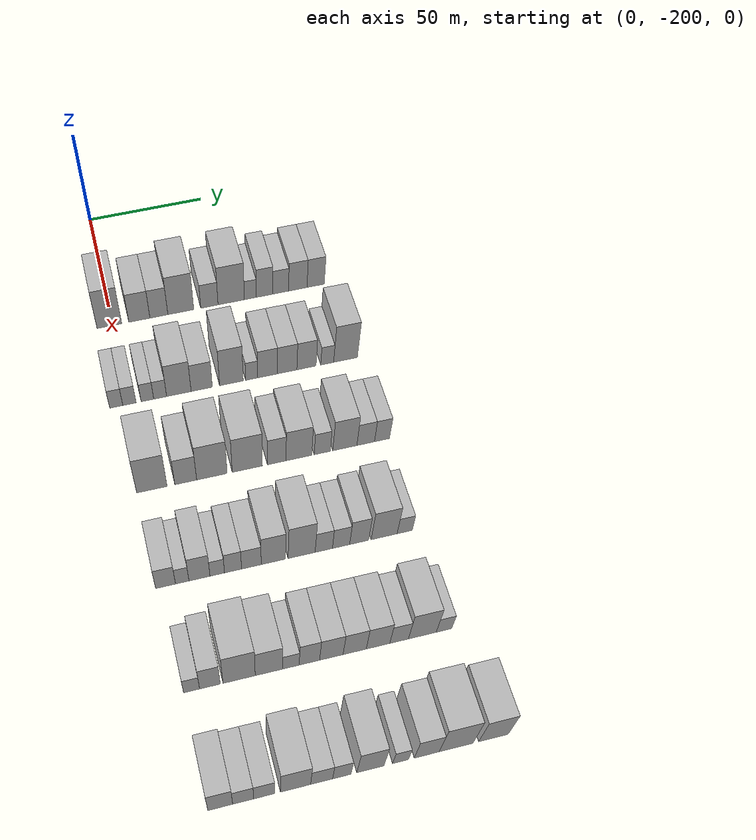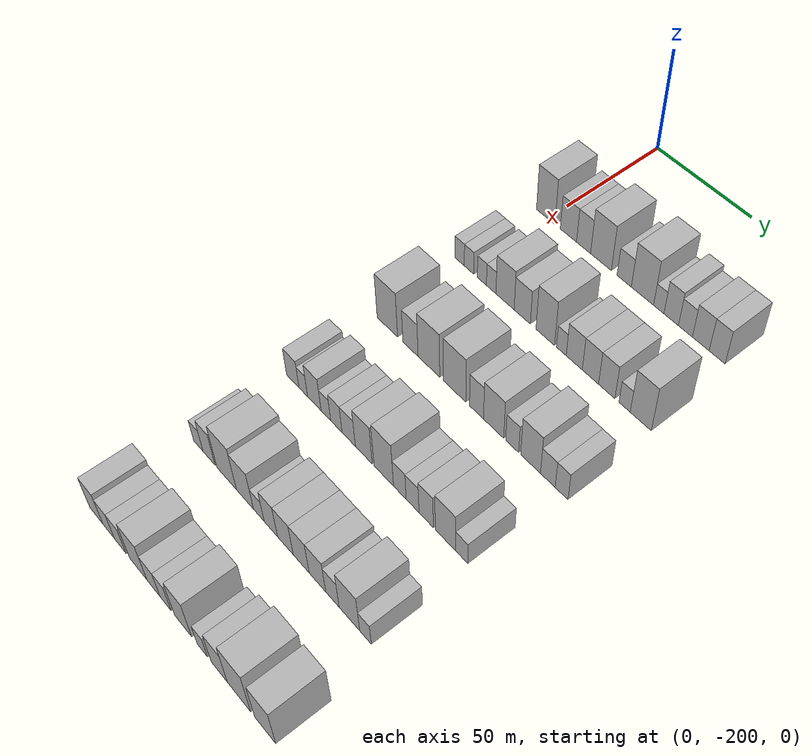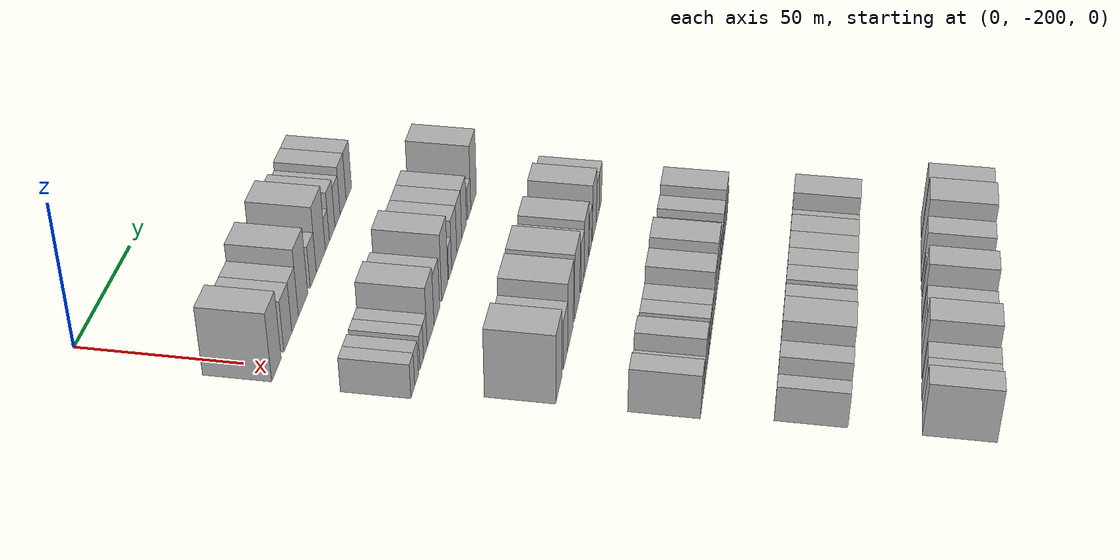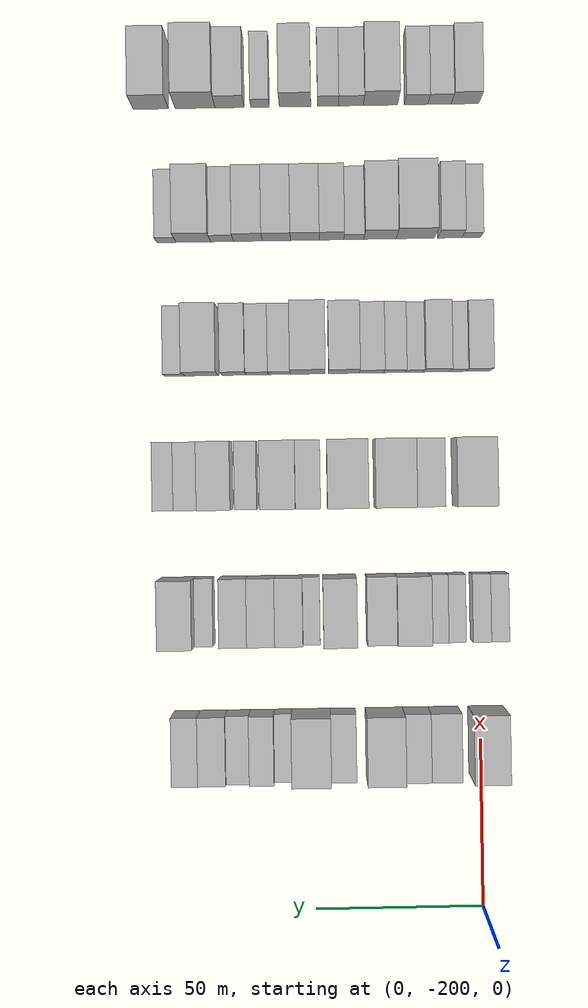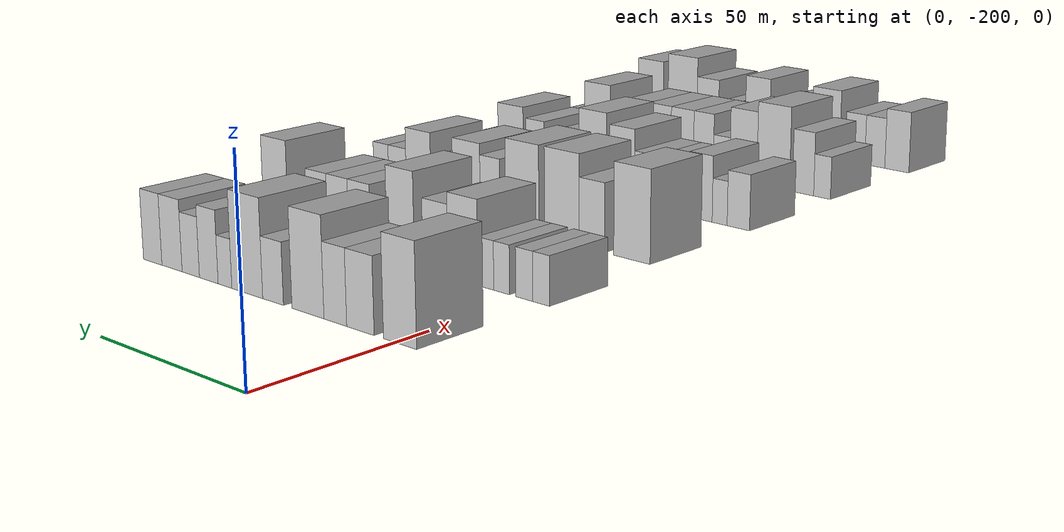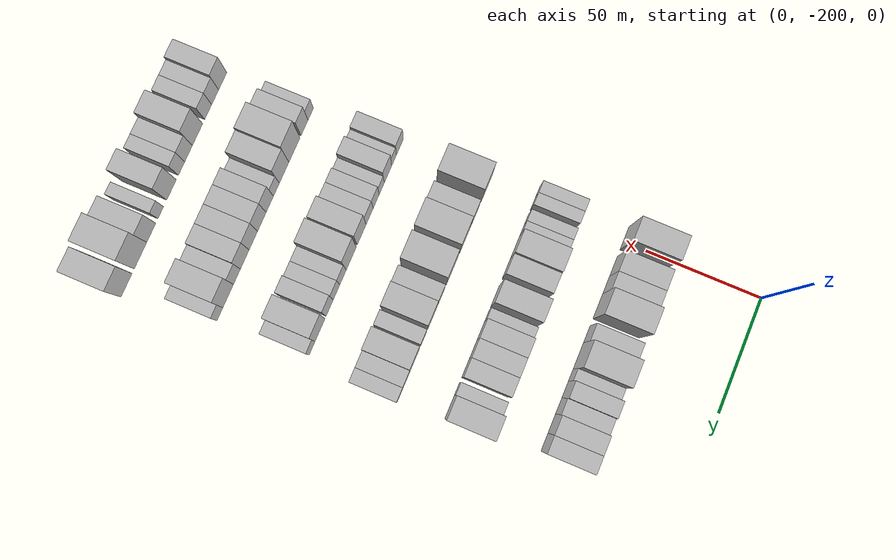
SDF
<sdf version="1.6">
 <world name="default">
  <model name="building_49">
   <static>1</static>
   <pose>50.0000 -201.4404 0 0.000000 0.000000 0.000000</pose>
   <link name="link">
    <pose>0 0 12.00 0 0 0</pose>
    <collision name="collision"><geometry><box><size>20.0000 10.3864 24.0000</size></box></geometry></collision>
    <visual name="visual">
     <cast_shadows>0</cast_shadows>
     <geometry><box><size>20.0000 10.3864 24.0000</size></box></geometry>
     <material>
      <script>
       <uri>model://HANNAS_wall/materials/scripts</uri>
       <uri>model://HANNAS_wall/materials/textures</uri>
       <name>vrc/HANNAS_wall</name>
      </script>
     </material>
    </visual>
   </link>
  </model>
  <model name="building_50">
   <static>1</static>
   <pose>50.0000 -188.7708 0 0.000000 0.000000 0.000000</pose>
   <link name="link">
    <pose>0 0 9.00 0 0 0</pose>
    <collision name="collision"><geometry><box><size>20.0000 8.9527 18.0000</size></box></geometry></collision>
    <visual name="visual">
     <cast_shadows>0</cast_shadows>
     <geometry><box><size>20.0000 8.9527 18.0000</size></box></geometry>
     <material>
      <script>
       <uri>model://HANNAS_wall/materials/scripts</uri>
       <uri>model://HANNAS_wall/materials/textures</uri>
       <name>vrc/HANNAS_wall</name>
      </script>
     </material>
    </visual>
   </link>
  </model>
  <model name="building_51">
   <static>1</static>
   <pose>50.0000 -180.4759 0 0.000000 0.000000 0.000000</pose>
   <link name="link">
    <pose>0 0 9.00 0 0 0</pose>
    <collision name="collision"><geometry><box><size>20.0000 7.6372 18.0000</size></box></geometry></collision>
    <visual name="visual">
     <cast_shadows>0</cast_shadows>
     <geometry><box><size>20.0000 7.6372 18.0000</size></box></geometry>
     <material>
      <script>
       <uri>model://HANNAS_wall/materials/scripts</uri>
       <uri>model://HANNAS_wall/materials/textures</uri>
       <name>vrc/HANNAS_wall</name>
      </script>
     </material>
    </visual>
   </link>
  </model>
  <model name="building_52">
   <static>1</static>
   <pose>50.0000 -171.1190 0 0.000000 0.000000 0.000000</pose>
   <link name="link">
    <pose>0 0 12.00 0 0 0</pose>
    <collision name="collision"><geometry><box><size>20.0000 11.0766 24.0000</size></box></geometry></collision>
    <visual name="visual">
     <cast_shadows>0</cast_shadows>
     <geometry><box><size>20.0000 11.0766 24.0000</size></box></geometry>
     <material>
      <script>
       <uri>model://HANNAS_wall/materials/scripts</uri>
       <uri>model://HANNAS_wall/materials/textures</uri>
       <name>vrc/HANNAS_wall</name>
      </script>
     </material>
    </visual>
   </link>
  </model>
  <model name="building_53">
   <static>1</static>
   <pose>50.0000 -158.8508 0 0.000000 0.000000 0.000000</pose>
   <link name="link">
    <pose>0 0 7.50 0 0 0</pose>
    <collision name="collision"><geometry><box><size>20.0000 7.4597 15.0000</size></box></geometry></collision>
    <visual name="visual">
     <cast_shadows>0</cast_shadows>
     <geometry><box><size>20.0000 7.4597 15.0000</size></box></geometry>
     <material>
      <script>
       <uri>model://HANNAS_wall/materials/scripts</uri>
       <uri>model://HANNAS_wall/materials/textures</uri>
       <name>vrc/HANNAS_wall</name>
      </script>
     </material>
    </visual>
   </link>
  </model>
  <model name="building_54">
   <static>1</static>
   <pose>50.0000 -149.4165 0 0.000000 0.000000 0.000000</pose>
   <link name="link">
    <pose>0 0 12.00 0 0 0</pose>
    <collision name="collision"><geometry><box><size>20.0000 11.4088 24.0000</size></box></geometry></collision>
    <visual name="visual">
     <cast_shadows>0</cast_shadows>
     <geometry><box><size>20.0000 11.4088 24.0000</size></box></geometry>
     <material>
      <script>
       <uri>model://HANNAS_wall/materials/scripts</uri>
       <uri>model://HANNAS_wall/materials/textures</uri>
       <name>vrc/HANNAS_wall</name>
      </script>
     </material>
    </visual>
   </link>
  </model>
  <model name="building_55">
   <static>1</static>
   <pose>50.0000 -141.1042 0 0.000000 0.000000 0.000000</pose>
   <link name="link">
    <pose>0 0 6.00 0 0 0</pose>
    <collision name="collision"><geometry><box><size>20.0000 5.2157 12.0000</size></box></geometry></collision>
    <visual name="visual">
     <cast_shadows>0</cast_shadows>
     <geometry><box><size>20.0000 5.2157 12.0000</size></box></geometry>
     <material>
      <script>
       <uri>model://HANNAS_wall/materials/scripts</uri>
       <uri>model://HANNAS_wall/materials/textures</uri>
       <name>vrc/HANNAS_wall</name>
      </script>
     </material>
    </visual>
   </link>
  </model>
  <model name="building_56">
   <static>1</static>
   <pose>50.0000 -134.8899 0 0.000000 0.000000 0.000000</pose>
   <link name="link">
    <pose>0 0 9.00 0 0 0</pose>
    <collision name="collision"><geometry><box><size>20.0000 7.2129 18.0000</size></box></geometry></collision>
    <visual name="visual">
     <cast_shadows>0</cast_shadows>
     <geometry><box><size>20.0000 7.2129 18.0000</size></box></geometry>
     <material>
      <script>
       <uri>model://HANNAS_wall/materials/scripts</uri>
       <uri>model://HANNAS_wall/materials/textures</uri>
       <name>vrc/HANNAS_wall</name>
      </script>
     </material>
    </visual>
   </link>
  </model>
  <model name="building_57">
   <static>1</static>
   <pose>50.0000 -127.8610 0 0.000000 0.000000 0.000000</pose>
   <link name="link">
    <pose>0 0 7.50 0 0 0</pose>
    <collision name="collision"><geometry><box><size>20.0000 6.8449 15.0000</size></box></geometry></collision>
    <visual name="visual">
     <cast_shadows>0</cast_shadows>
     <geometry><box><size>20.0000 6.8449 15.0000</size></box></geometry>
     <material>
      <script>
       <uri>model://HANNAS_wall/materials/scripts</uri>
       <uri>model://HANNAS_wall/materials/textures</uri>
       <name>vrc/HANNAS_wall</name>
      </script>
     </material>
    </visual>
   </link>
  </model>
  <model name="building_58">
   <static>1</static>
   <pose>50.0000 -120.3726 0 0.000000 0.000000 0.000000</pose>
   <link name="link">
    <pose>0 0 9.00 0 0 0</pose>
    <collision name="collision"><geometry><box><size>20.0000 8.1318 18.0000</size></box></geometry></collision>
    <visual name="visual">
     <cast_shadows>0</cast_shadows>
     <geometry><box><size>20.0000 8.1318 18.0000</size></box></geometry>
     <material>
      <script>
       <uri>model://HANNAS_wall/materials/scripts</uri>
       <uri>model://HANNAS_wall/materials/textures</uri>
       <name>vrc/HANNAS_wall</name>
      </script>
     </material>
    </visual>
   </link>
  </model>
  <model name="building_59">
   <static>1</static>
   <pose>50.0000 -112.5076 0 0.000000 0.000000 0.000000</pose>
   <link name="link">
    <pose>0 0 9.00 0 0 0</pose>
    <collision name="collision"><geometry><box><size>20.0000 7.5983 18.0000</size></box></geometry></collision>
    <visual name="visual">
     <cast_shadows>0</cast_shadows>
     <geometry><box><size>20.0000 7.5983 18.0000</size></box></geometry>
     <material>
      <script>
       <uri>model://HANNAS_wall/materials/scripts</uri>
       <uri>model://HANNAS_wall/materials/textures</uri>
       <name>vrc/HANNAS_wall</name>
      </script>
     </material>
    </visual>
   </link>
  </model>
  <model name="building_187">
   <static>1</static>
   <pose>90.0000 -205.3561 0 0.000000 0.000000 0.000000</pose>
   <link name="link">
    <pose>0 0 6.00 0 0 0</pose>
    <collision name="collision"><geometry><box><size>20.0000 5.2814 12.0000</size></box></geometry></collision>
    <visual name="visual">
     <cast_shadows>0</cast_shadows>
     <geometry><box><size>20.0000 5.2814 12.0000</size></box></geometry>
     <material>
      <script>
       <uri>model://HANNAS_wall/materials/scripts</uri>
       <uri>model://HANNAS_wall/materials/textures</uri>
       <name>vrc/HANNAS_wall</name>
      </script>
     </material>
    </visual>
   </link>
  </model>
  <model name="building_188">
   <static>1</static>
   <pose>90.0000 -200.0244 0 0.000000 0.000000 0.000000</pose>
   <link name="link">
    <pose>0 0 6.00 0 0 0</pose>
    <collision name="collision"><geometry><box><size>20.0000 5.3820 12.0000</size></box></geometry></collision>
    <visual name="visual">
     <cast_shadows>0</cast_shadows>
     <geometry><box><size>20.0000 5.3820 12.0000</size></box></geometry>
     <material>
      <script>
       <uri>model://HANNAS_wall/materials/scripts</uri>
       <uri>model://HANNAS_wall/materials/textures</uri>
       <name>vrc/HANNAS_wall</name>
      </script>
     </material>
    </visual>
   </link>
  </model>
  <model name="building_189">
   <static>1</static>
   <pose>90.0000 -192.7798 0 0.000000 0.000000 0.000000</pose>
   <link name="link">
    <pose>0 0 6.00 0 0 0</pose>
    <collision name="collision"><geometry><box><size>20.0000 5.1073 12.0000</size></box></geometry></collision>
    <visual name="visual">
     <cast_shadows>0</cast_shadows>
     <geometry><box><size>20.0000 5.1073 12.0000</size></box></geometry>
     <material>
      <script>
       <uri>model://HANNAS_wall/materials/scripts</uri>
       <uri>model://HANNAS_wall/materials/textures</uri>
       <name>vrc/HANNAS_wall</name>
      </script>
     </material>
    </visual>
   </link>
  </model>
  <model name="building_190">
   <static>1</static>
   <pose>90.0000 -187.6021 0 0.000000 0.000000 0.000000</pose>
   <link name="link">
    <pose>0 0 6.00 0 0 0</pose>
    <collision name="collision"><geometry><box><size>20.0000 5.2482 12.0000</size></box></geometry></collision>
    <visual name="visual">
     <cast_shadows>0</cast_shadows>
     <geometry><box><size>20.0000 5.2482 12.0000</size></box></geometry>
     <material>
      <script>
       <uri>model://HANNAS_wall/materials/scripts</uri>
       <uri>model://HANNAS_wall/materials/textures</uri>
       <name>vrc/HANNAS_wall</name>
      </script>
     </material>
    </visual>
   </link>
  </model>
  <model name="building_191">
   <static>1</static>
   <pose>90.0000 -179.9806 0 0.000000 0.000000 0.000000</pose>
   <link name="link">
    <pose>0 0 10.50 0 0 0</pose>
    <collision name="collision"><geometry><box><size>20.0000 9.9947 21.0000</size></box></geometry></collision>
    <visual name="visual">
     <cast_shadows>0</cast_shadows>
     <geometry><box><size>20.0000 9.9947 21.0000</size></box></geometry>
     <material>
      <script>
       <uri>model://HANNAS_wall/materials/scripts</uri>
       <uri>model://HANNAS_wall/materials/textures</uri>
       <name>vrc/HANNAS_wall</name>
      </script>
     </material>
    </visual>
   </link>
  </model>
  <model name="building_192">
   <static>1</static>
   <pose>90.0000 -170.6391 0 0.000000 0.000000 0.000000</pose>
   <link name="link">
    <pose>0 0 9.00 0 0 0</pose>
    <collision name="collision"><geometry><box><size>20.0000 8.6883 18.0000</size></box></geometry></collision>
    <visual name="visual">
     <cast_shadows>0</cast_shadows>
     <geometry><box><size>20.0000 8.6883 18.0000</size></box></geometry>
     <material>
      <script>
       <uri>model://HANNAS_wall/materials/scripts</uri>
       <uri>model://HANNAS_wall/materials/textures</uri>
       <name>vrc/HANNAS_wall</name>
      </script>
     </material>
    </visual>
   </link>
  </model>
  <model name="building_193">
   <static>1</static>
   <pose>90.0000 -158.4213 0 0.000000 0.000000 0.000000</pose>
   <link name="link">
    <pose>0 0 12.00 0 0 0</pose>
    <collision name="collision"><geometry><box><size>20.0000 9.7473 24.0000</size></box></geometry></collision>
    <visual name="visual">
     <cast_shadows>0</cast_shadows>
     <geometry><box><size>20.0000 9.7473 24.0000</size></box></geometry>
     <material>
      <script>
       <uri>model://HANNAS_wall/materials/scripts</uri>
       <uri>model://HANNAS_wall/materials/textures</uri>
       <name>vrc/HANNAS_wall</name>
      </script>
     </material>
    </visual>
   </link>
  </model>
  <model name="building_194">
   <static>1</static>
   <pose>90.0000 -150.0361 0 0.000000 0.000000 0.000000</pose>
   <link name="link">
    <pose>0 0 6.00 0 0 0</pose>
    <collision name="collision"><geometry><box><size>20.0000 5.0231 12.0000</size></box></geometry></collision>
    <visual name="visual">
     <cast_shadows>0</cast_shadows>
     <geometry><box><size>20.0000 5.0231 12.0000</size></box></geometry>
     <material>
      <script>
       <uri>model://HANNAS_wall/materials/scripts</uri>
       <uri>model://HANNAS_wall/materials/textures</uri>
       <name>vrc/HANNAS_wall</name>
      </script>
     </material>
    </visual>
   </link>
  </model>
  <model name="building_195">
   <static>1</static>
   <pose>90.0000 -143.4325 0 0.000000 0.000000 0.000000</pose>
   <link name="link">
    <pose>0 0 9.00 0 0 0</pose>
    <collision name="collision"><geometry><box><size>20.0000 8.1840 18.0000</size></box></geometry></collision>
    <visual name="visual">
     <cast_shadows>0</cast_shadows>
     <geometry><box><size>20.0000 8.1840 18.0000</size></box></geometry>
     <material>
      <script>
       <uri>model://HANNAS_wall/materials/scripts</uri>
       <uri>model://HANNAS_wall/materials/textures</uri>
       <name>vrc/HANNAS_wall</name>
      </script>
     </material>
    </visual>
   </link>
  </model>
  <model name="building_196">
   <static>1</static>
   <pose>90.0000 -135.2603 0 0.000000 0.000000 0.000000</pose>
   <link name="link">
    <pose>0 0 9.00 0 0 0</pose>
    <collision name="collision"><geometry><box><size>20.0000 8.1604 18.0000</size></box></geometry></collision>
    <visual name="visual">
     <cast_shadows>0</cast_shadows>
     <geometry><box><size>20.0000 8.1604 18.0000</size></box></geometry>
     <material>
      <script>
       <uri>model://HANNAS_wall/materials/scripts</uri>
       <uri>model://HANNAS_wall/materials/textures</uri>
       <name>vrc/HANNAS_wall</name>
      </script>
     </material>
    </visual>
   </link>
  </model>
  <model name="building_197">
   <static>1</static>
   <pose>90.0000 -127.1543 0 0.000000 0.000000 0.000000</pose>
   <link name="link">
    <pose>0 0 9.00 0 0 0</pose>
    <collision name="collision"><geometry><box><size>20.0000 8.0516 18.0000</size></box></geometry></collision>
    <visual name="visual">
     <cast_shadows>0</cast_shadows>
     <geometry><box><size>20.0000 8.0516 18.0000</size></box></geometry>
     <material>
      <script>
       <uri>model://HANNAS_wall/materials/scripts</uri>
       <uri>model://HANNAS_wall/materials/textures</uri>
       <name>vrc/HANNAS_wall</name>
      </script>
     </material>
    </visual>
   </link>
  </model>
  <model name="building_198">
   <static>1</static>
   <pose>90.0000 -118.4009 0 0.000000 0.000000 0.000000</pose>
   <link name="link">
    <pose>0 0 6.00 0 0 0</pose>
    <collision name="collision"><geometry><box><size>20.0000 5.4553 12.0000</size></box></geometry></collision>
    <visual name="visual">
     <cast_shadows>0</cast_shadows>
     <geometry><box><size>20.0000 5.4553 12.0000</size></box></geometry>
     <material>
      <script>
       <uri>model://HANNAS_wall/materials/scripts</uri>
       <uri>model://HANNAS_wall/materials/textures</uri>
       <name>vrc/HANNAS_wall</name>
      </script>
     </material>
    </visual>
   </link>
  </model>
  <model name="building_199">
   <static>1</static>
   <pose>90.0000 -110.6467 0 0.000000 0.000000 0.000000</pose>
   <link name="link">
    <pose>0 0 12.00 0 0 0</pose>
    <collision name="collision"><geometry><box><size>20.0000 10.0531 24.0000</size></box></geometry></collision>
    <visual name="visual">
     <cast_shadows>0</cast_shadows>
     <geometry><box><size>20.0000 10.0531 24.0000</size></box></geometry>
     <material>
      <script>
       <uri>model://HANNAS_wall/materials/scripts</uri>
       <uri>model://HANNAS_wall/materials/textures</uri>
       <name>vrc/HANNAS_wall</name>
      </script>
     </material>
    </visual>
   </link>
  </model>
  <model name="building_328">
   <static>1</static>
   <pose>130.0000 -198.4679 0 0.000000 0.000000 0.000000</pose>
   <link name="link">
    <pose>0 0 12.00 0 0 0</pose>
    <collision name="collision"><geometry><box><size>20.0000 11.7392 24.0000</size></box></geometry></collision>
    <visual name="visual">
     <cast_shadows>0</cast_shadows>
     <geometry><box><size>20.0000 11.7392 24.0000</size></box></geometry>
     <material>
      <script>
       <uri>model://HANNAS_wall/materials/scripts</uri>
       <uri>model://HANNAS_wall/materials/textures</uri>
       <name>vrc/HANNAS_wall</name>
      </script>
     </material>
    </visual>
   </link>
  </model>
  <model name="building_329">
   <static>1</static>
   <pose>130.0000 -185.3499 0 0.000000 0.000000 0.000000</pose>
   <link name="link">
    <pose>0 0 9.00 0 0 0</pose>
    <collision name="collision"><geometry><box><size>20.0000 8.4970 18.0000</size></box></geometry></collision>
    <visual name="visual">
     <cast_shadows>0</cast_shadows>
     <geometry><box><size>20.0000 8.4970 18.0000</size></box></geometry>
     <material>
      <script>
       <uri>model://HANNAS_wall/materials/scripts</uri>
       <uri>model://HANNAS_wall/materials/textures</uri>
       <name>vrc/HANNAS_wall</name>
      </script>
     </material>
    </visual>
   </link>
  </model>
  <model name="building_330">
   <static>1</static>
   <pose>130.0000 -175.1386 0 0.000000 0.000000 0.000000</pose>
   <link name="link">
    <pose>0 0 12.00 0 0 0</pose>
    <collision name="collision"><geometry><box><size>20.0000 11.9255 24.0000</size></box></geometry></collision>
    <visual name="visual">
     <cast_shadows>0</cast_shadows>
     <geometry><box><size>20.0000 11.9255 24.0000</size></box></geometry>
     <material>
      <script>
       <uri>model://HANNAS_wall/materials/scripts</uri>
       <uri>model://HANNAS_wall/materials/textures</uri>
       <name>vrc/HANNAS_wall</name>
      </script>
     </material>
    </visual>
   </link>
  </model>
  <model name="building_331">
   <static>1</static>
   <pose>130.0000 -161.2317 0 0.000000 0.000000 0.000000</pose>
   <link name="link">
    <pose>0 0 12.00 0 0 0</pose>
    <collision name="collision"><geometry><box><size>20.0000 11.8884 24.0000</size></box></geometry></collision>
    <visual name="visual">
     <cast_shadows>0</cast_shadows>
     <geometry><box><size>20.0000 11.8884 24.0000</size></box></geometry>
     <material>
      <script>
       <uri>model://HANNAS_wall/materials/scripts</uri>
       <uri>model://HANNAS_wall/materials/textures</uri>
       <name>vrc/HANNAS_wall</name>
      </script>
     </material>
    </visual>
   </link>
  </model>
  <model name="building_332">
   <static>1</static>
   <pose>130.0000 -149.6320 0 0.000000 0.000000 0.000000</pose>
   <link name="link">
    <pose>0 0 9.00 0 0 0</pose>
    <collision name="collision"><geometry><box><size>20.0000 7.3110 18.0000</size></box></geometry></collision>
    <visual name="visual">
     <cast_shadows>0</cast_shadows>
     <geometry><box><size>20.0000 7.3110 18.0000</size></box></geometry>
     <material>
      <script>
       <uri>model://HANNAS_wall/materials/scripts</uri>
       <uri>model://HANNAS_wall/materials/textures</uri>
       <name>vrc/HANNAS_wall</name>
      </script>
     </material>
    </visual>
   </link>
  </model>
  <model name="building_333">
   <static>1</static>
   <pose>130.0000 -140.8203 0 0.000000 0.000000 0.000000</pose>
   <link name="link">
    <pose>0 0 10.50 0 0 0</pose>
    <collision name="collision"><geometry><box><size>20.0000 10.3123 21.0000</size></box></geometry></collision>
    <visual name="visual">
     <cast_shadows>0</cast_shadows>
     <geometry><box><size>20.0000 10.3123 21.0000</size></box></geometry>
     <material>
      <script>
       <uri>model://HANNAS_wall/materials/scripts</uri>
       <uri>model://HANNAS_wall/materials/textures</uri>
       <name>vrc/HANNAS_wall</name>
      </script>
     </material>
    </visual>
   </link>
  </model>
  <model name="building_334">
   <static>1</static>
   <pose>130.0000 -131.4295 0 0.000000 0.000000 0.000000</pose>
   <link name="link">
    <pose>0 0 7.50 0 0 0</pose>
    <collision name="collision"><geometry><box><size>20.0000 6.4694 15.0000</size></box></geometry></collision>
    <visual name="visual">
     <cast_shadows>0</cast_shadows>
     <geometry><box><size>20.0000 6.4694 15.0000</size></box></geometry>
     <material>
      <script>
       <uri>model://HANNAS_wall/materials/scripts</uri>
       <uri>model://HANNAS_wall/materials/textures</uri>
       <name>vrc/HANNAS_wall</name>
      </script>
     </material>
    </visual>
   </link>
  </model>
  <model name="building_335">
   <static>1</static>
   <pose>130.0000 -122.3208 0 0.000000 0.000000 0.000000</pose>
   <link name="link">
    <pose>0 0 10.50 0 0 0</pose>
    <collision name="collision"><geometry><box><size>20.0000 9.7481 21.0000</size></box></geometry></collision>
    <visual name="visual">
     <cast_shadows>0</cast_shadows>
     <geometry><box><size>20.0000 9.7481 21.0000</size></box></geometry>
     <material>
      <script>
       <uri>model://HANNAS_wall/materials/scripts</uri>
       <uri>model://HANNAS_wall/materials/textures</uri>
       <name>vrc/HANNAS_wall</name>
      </script>
     </material>
    </visual>
   </link>
  </model>
  <model name="building_336">
   <static>1</static>
   <pose>130.0000 -113.8833 0 0.000000 0.000000 0.000000</pose>
   <link name="link">
    <pose>0 0 7.50 0 0 0</pose>
    <collision name="collision"><geometry><box><size>20.0000 7.1268 15.0000</size></box></geometry></collision>
    <visual name="visual">
     <cast_shadows>0</cast_shadows>
     <geometry><box><size>20.0000 7.1268 15.0000</size></box></geometry>
     <material>
      <script>
       <uri>model://HANNAS_wall/materials/scripts</uri>
       <uri>model://HANNAS_wall/materials/textures</uri>
       <name>vrc/HANNAS_wall</name>
      </script>
     </material>
    </visual>
   </link>
  </model>
  <model name="building_337">
   <static>1</static>
   <pose>130.0000 -107.2702 0 0.000000 0.000000 0.000000</pose>
   <link name="link">
    <pose>0 0 7.50 0 0 0</pose>
    <collision name="collision"><geometry><box><size>20.0000 6.0994 15.0000</size></box></geometry></collision>
    <visual name="visual">
     <cast_shadows>0</cast_shadows>
     <geometry><box><size>20.0000 6.0994 15.0000</size></box></geometry>
     <material>
      <script>
       <uri>model://HANNAS_wall/materials/scripts</uri>
       <uri>model://HANNAS_wall/materials/textures</uri>
       <name>vrc/HANNAS_wall</name>
      </script>
     </material>
    </visual>
   </link>
  </model>
  <model name="building_470">
   <static>1</static>
   <pose>170.0000 -200.9420 0 0.000000 0.000000 0.000000</pose>
   <link name="link">
    <pose>0 0 7.50 0 0 0</pose>
    <collision name="collision"><geometry><box><size>20.0000 7.3117 15.0000</size></box></geometry></collision>
    <visual name="visual">
     <cast_shadows>0</cast_shadows>
     <geometry><box><size>20.0000 7.3117 15.0000</size></box></geometry>
     <material>
      <script>
       <uri>model://HANNAS_wall/materials/scripts</uri>
       <uri>model://HANNAS_wall/materials/textures</uri>
       <name>vrc/HANNAS_wall</name>
      </script>
     </material>
    </visual>
   </link>
  </model>
  <model name="building_471">
   <static>1</static>
   <pose>170.0000 -194.8061 0 0.000000 0.000000 0.000000</pose>
   <link name="link">
    <pose>0 0 6.00 0 0 0</pose>
    <collision name="collision"><geometry><box><size>20.0000 4.9601 12.0000</size></box></geometry></collision>
    <visual name="visual">
     <cast_shadows>0</cast_shadows>
     <geometry><box><size>20.0000 4.9601 12.0000</size></box></geometry>
     <material>
      <script>
       <uri>model://HANNAS_wall/materials/scripts</uri>
       <uri>model://HANNAS_wall/materials/textures</uri>
       <name>vrc/HANNAS_wall</name>
      </script>
     </material>
    </visual>
   </link>
  </model>
  <model name="building_472">
   <static>1</static>
   <pose>170.0000 -188.4344 0 0.000000 0.000000 0.000000</pose>
   <link name="link">
    <pose>0 0 9.00 0 0 0</pose>
    <collision name="collision"><geometry><box><size>20.0000 7.7833 18.0000</size></box></geometry></collision>
    <visual name="visual">
     <cast_shadows>0</cast_shadows>
     <geometry><box><size>20.0000 7.7833 18.0000</size></box></geometry>
     <material>
      <script>
       <uri>model://HANNAS_wall/materials/scripts</uri>
       <uri>model://HANNAS_wall/materials/textures</uri>
       <name>vrc/HANNAS_wall</name>
      </script>
     </material>
    </visual>
   </link>
  </model>
  <model name="building_473">
   <static>1</static>
   <pose>170.0000 -181.8443 0 0.000000 0.000000 0.000000</pose>
   <link name="link">
    <pose>0 0 6.00 0 0 0</pose>
    <collision name="collision"><geometry><box><size>20.0000 5.3969 12.0000</size></box></geometry></collision>
    <visual name="visual">
     <cast_shadows>0</cast_shadows>
     <geometry><box><size>20.0000 5.3969 12.0000</size></box></geometry>
     <material>
      <script>
       <uri>model://HANNAS_wall/materials/scripts</uri>
       <uri>model://HANNAS_wall/materials/textures</uri>
       <name>vrc/HANNAS_wall</name>
      </script>
     </material>
    </visual>
   </link>
  </model>
  <model name="building_474">
   <static>1</static>
   <pose>170.0000 -175.9743 0 0.000000 0.000000 0.000000</pose>
   <link name="link">
    <pose>0 0 7.50 0 0 0</pose>
    <collision name="collision"><geometry><box><size>20.0000 6.3432 15.0000</size></box></geometry></collision>
    <visual name="visual">
     <cast_shadows>0</cast_shadows>
     <geometry><box><size>20.0000 6.3432 15.0000</size></box></geometry>
     <material>
      <script>
       <uri>model://HANNAS_wall/materials/scripts</uri>
       <uri>model://HANNAS_wall/materials/textures</uri>
       <name>vrc/HANNAS_wall</name>
      </script>
     </material>
    </visual>
   </link>
  </model>
  <model name="building_475">
   <static>1</static>
   <pose>170.0000 -169.1184 0 0.000000 0.000000 0.000000</pose>
   <link name="link">
    <pose>0 0 7.50 0 0 0</pose>
    <collision name="collision"><geometry><box><size>20.0000 7.3685 15.0000</size></box></geometry></collision>
    <visual name="visual">
     <cast_shadows>0</cast_shadows>
     <geometry><box><size>20.0000 7.3685 15.0000</size></box></geometry>
     <material>
      <script>
       <uri>model://HANNAS_wall/materials/scripts</uri>
       <uri>model://HANNAS_wall/materials/textures</uri>
       <name>vrc/HANNAS_wall</name>
      </script>
     </material>
    </visual>
   </link>
  </model>
  <model name="building_476">
   <static>1</static>
   <pose>170.0000 -160.8722 0 0.000000 0.000000 0.000000</pose>
   <link name="link">
    <pose>0 0 10.50 0 0 0</pose>
    <collision name="collision"><geometry><box><size>20.0000 9.1240 21.0000</size></box></geometry></collision>
    <visual name="visual">
     <cast_shadows>0</cast_shadows>
     <geometry><box><size>20.0000 9.1240 21.0000</size></box></geometry>
     <material>
      <script>
       <uri>model://HANNAS_wall/materials/scripts</uri>
       <uri>model://HANNAS_wall/materials/textures</uri>
       <name>vrc/HANNAS_wall</name>
      </script>
     </material>
    </visual>
   </link>
  </model>
  <model name="building_477">
   <static>1</static>
   <pose>170.0000 -150.1738 0 0.000000 0.000000 0.000000</pose>
   <link name="link">
    <pose>0 0 12.00 0 0 0</pose>
    <collision name="collision"><geometry><box><size>20.0000 10.2728 24.0000</size></box></geometry></collision>
    <visual name="visual">
     <cast_shadows>0</cast_shadows>
     <geometry><box><size>20.0000 10.2728 24.0000</size></box></geometry>
     <material>
      <script>
       <uri>model://HANNAS_wall/materials/scripts</uri>
       <uri>model://HANNAS_wall/materials/textures</uri>
       <name>vrc/HANNAS_wall</name>
      </script>
     </material>
    </visual>
   </link>
  </model>
  <model name="building_478">
   <static>1</static>
   <pose>170.0000 -141.7403 0 0.000000 0.000000 0.000000</pose>
   <link name="link">
    <pose>0 0 7.50 0 0 0</pose>
    <collision name="collision"><geometry><box><size>20.0000 6.5943 15.0000</size></box></geometry></collision>
    <visual name="visual">
     <cast_shadows>0</cast_shadows>
     <geometry><box><size>20.0000 6.5943 15.0000</size></box></geometry>
     <material>
      <script>
       <uri>model://HANNAS_wall/materials/scripts</uri>
       <uri>model://HANNAS_wall/materials/textures</uri>
       <name>vrc/HANNAS_wall</name>
      </script>
     </material>
    </visual>
   </link>
  </model>
  <model name="building_479">
   <static>1</static>
   <pose>170.0000 -135.1434 0 0.000000 0.000000 0.000000</pose>
   <link name="link">
    <pose>0 0 7.50 0 0 0</pose>
    <collision name="collision"><geometry><box><size>20.0000 6.5996 15.0000</size></box></geometry></collision>
    <visual name="visual">
     <cast_shadows>0</cast_shadows>
     <geometry><box><size>20.0000 6.5996 15.0000</size></box></geometry>
     <material>
      <script>
       <uri>model://HANNAS_wall/materials/scripts</uri>
       <uri>model://HANNAS_wall/materials/textures</uri>
       <name>vrc/HANNAS_wall</name>
      </script>
     </material>
    </visual>
   </link>
  </model>
  <model name="building_480">
   <static>1</static>
   <pose>170.0000 -128.2075 0 0.000000 0.000000 0.000000</pose>
   <link name="link">
    <pose>0 0 9.00 0 0 0</pose>
    <collision name="collision"><geometry><box><size>20.0000 7.2723 18.0000</size></box></geometry></collision>
    <visual name="visual">
     <cast_shadows>0</cast_shadows>
     <geometry><box><size>20.0000 7.2723 18.0000</size></box></geometry>
     <material>
      <script>
       <uri>model://HANNAS_wall/materials/scripts</uri>
       <uri>model://HANNAS_wall/materials/textures</uri>
       <name>vrc/HANNAS_wall</name>
      </script>
     </material>
    </visual>
   </link>
  </model>
  <model name="building_481">
   <static>1</static>
   <pose>170.0000 -118.5507 0 0.000000 0.000000 0.000000</pose>
   <link name="link">
    <pose>0 0 10.50 0 0 0</pose>
    <collision name="collision"><geometry><box><size>20.0000 10.0412 21.0000</size></box></geometry></collision>
    <visual name="visual">
     <cast_shadows>0</cast_shadows>
     <geometry><box><size>20.0000 10.0412 21.0000</size></box></geometry>
     <material>
      <script>
       <uri>model://HANNAS_wall/materials/scripts</uri>
       <uri>model://HANNAS_wall/materials/textures</uri>
       <name>vrc/HANNAS_wall</name>
      </script>
     </material>
    </visual>
   </link>
  </model>
  <model name="building_482">
   <static>1</static>
   <pose>170.0000 -110.5894 0 0.000000 0.000000 0.000000</pose>
   <link name="link">
    <pose>0 0 6.00 0 0 0</pose>
    <collision name="collision"><geometry><box><size>20.0000 5.8815 12.0000</size></box></geometry></collision>
    <visual name="visual">
     <cast_shadows>0</cast_shadows>
     <geometry><box><size>20.0000 5.8815 12.0000</size></box></geometry>
     <material>
      <script>
       <uri>model://HANNAS_wall/materials/scripts</uri>
       <uri>model://HANNAS_wall/materials/textures</uri>
       <name>vrc/HANNAS_wall</name>
      </script>
     </material>
    </visual>
   </link>
  </model>
  <model name="building_620">
   <static>1</static>
   <pose>210.0000 -199.6461 0 0.000000 0.000000 0.000000</pose>
   <link name="link">
    <pose>0 0 6.00 0 0 0</pose>
    <collision name="collision"><geometry><box><size>20.0000 5.5928 12.0000</size></box></geometry></collision>
    <visual name="visual">
     <cast_shadows>0</cast_shadows>
     <geometry><box><size>20.0000 5.5928 12.0000</size></box></geometry>
     <material>
      <script>
       <uri>model://HANNAS_wall/materials/scripts</uri>
       <uri>model://HANNAS_wall/materials/textures</uri>
       <name>vrc/HANNAS_wall</name>
      </script>
     </material>
    </visual>
   </link>
  </model>
  <model name="building_621">
   <static>1</static>
   <pose>210.0000 -193.2319 0 0.000000 0.000000 0.000000</pose>
   <link name="link">
    <pose>0 0 9.00 0 0 0</pose>
    <collision name="collision"><geometry><box><size>20.0000 7.2357 18.0000</size></box></geometry></collision>
    <visual name="visual">
     <cast_shadows>0</cast_shadows>
     <geometry><box><size>20.0000 7.2357 18.0000</size></box></geometry>
     <material>
      <script>
       <uri>model://HANNAS_wall/materials/scripts</uri>
       <uri>model://HANNAS_wall/materials/textures</uri>
       <name>vrc/HANNAS_wall</name>
      </script>
     </material>
    </visual>
   </link>
  </model>
  <model name="building_622">
   <static>1</static>
   <pose>210.0000 -182.9222 0 0.000000 0.000000 0.000000</pose>
   <link name="link">
    <pose>0 0 12.00 0 0 0</pose>
    <collision name="collision"><geometry><box><size>20.0000 11.3836 24.0000</size></box></geometry></collision>
    <visual name="visual">
     <cast_shadows>0</cast_shadows>
     <geometry><box><size>20.0000 11.3836 24.0000</size></box></geometry>
     <material>
      <script>
       <uri>model://HANNAS_wall/materials/scripts</uri>
       <uri>model://HANNAS_wall/materials/textures</uri>
       <name>vrc/HANNAS_wall</name>
      </script>
     </material>
    </visual>
   </link>
  </model>
  <model name="building_623">
   <static>1</static>
   <pose>210.0000 -172.3997 0 0.000000 0.000000 0.000000</pose>
   <link name="link">
    <pose>0 0 10.50 0 0 0</pose>
    <collision name="collision"><geometry><box><size>20.0000 9.6615 21.0000</size></box></geometry></collision>
    <visual name="visual">
     <cast_shadows>0</cast_shadows>
     <geometry><box><size>20.0000 9.6615 21.0000</size></box></geometry>
     <material>
      <script>
       <uri>model://HANNAS_wall/materials/scripts</uri>
       <uri>model://HANNAS_wall/materials/textures</uri>
       <name>vrc/HANNAS_wall</name>
      </script>
     </material>
    </visual>
   </link>
  </model>
  <model name="building_624">
   <static>1</static>
   <pose>210.0000 -164.5747 0 0.000000 0.000000 0.000000</pose>
   <link name="link">
    <pose>0 0 6.00 0 0 0</pose>
    <collision name="collision"><geometry><box><size>20.0000 5.9885 12.0000</size></box></geometry></collision>
    <visual name="visual">
     <cast_shadows>0</cast_shadows>
     <geometry><box><size>20.0000 5.9885 12.0000</size></box></geometry>
     <material>
      <script>
       <uri>model://HANNAS_wall/materials/scripts</uri>
       <uri>model://HANNAS_wall/materials/textures</uri>
       <name>vrc/HANNAS_wall</name>
      </script>
     </material>
    </visual>
   </link>
  </model>
  <model name="building_625">
   <static>1</static>
   <pose>210.0000 -157.8882 0 0.000000 0.000000 0.000000</pose>
   <link name="link">
    <pose>0 0 9.00 0 0 0</pose>
    <collision name="collision"><geometry><box><size>20.0000 7.3844 18.0000</size></box></geometry></collision>
    <visual name="visual">
     <cast_shadows>0</cast_shadows>
     <geometry><box><size>20.0000 7.3844 18.0000</size></box></geometry>
     <material>
      <script>
       <uri>model://HANNAS_wall/materials/scripts</uri>
       <uri>model://HANNAS_wall/materials/textures</uri>
       <name>vrc/HANNAS_wall</name>
      </script>
     </material>
    </visual>
   </link>
  </model>
  <model name="building_626">
   <static>1</static>
   <pose>210.0000 -149.9502 0 0.000000 0.000000 0.000000</pose>
   <link name="link">
    <pose>0 0 9.00 0 0 0</pose>
    <collision name="collision"><geometry><box><size>20.0000 8.4917 18.0000</size></box></geometry></collision>
    <visual name="visual">
     <cast_shadows>0</cast_shadows>
     <geometry><box><size>20.0000 8.4917 18.0000</size></box></geometry>
     <material>
      <script>
       <uri>model://HANNAS_wall/materials/scripts</uri>
       <uri>model://HANNAS_wall/materials/textures</uri>
       <name>vrc/HANNAS_wall</name>
      </script>
     </material>
    </visual>
   </link>
  </model>
  <model name="building_627">
   <static>1</static>
   <pose>210.0000 -141.4944 0 0.000000 0.000000 0.000000</pose>
   <link name="link">
    <pose>0 0 9.00 0 0 0</pose>
    <collision name="collision"><geometry><box><size>20.0000 8.4197 18.0000</size></box></geometry></collision>
    <visual name="visual">
     <cast_shadows>0</cast_shadows>
     <geometry><box><size>20.0000 8.4197 18.0000</size></box></geometry>
     <material>
      <script>
       <uri>model://HANNAS_wall/materials/scripts</uri>
       <uri>model://HANNAS_wall/materials/textures</uri>
       <name>vrc/HANNAS_wall</name>
      </script>
     </material>
    </visual>
   </link>
  </model>
  <model name="building_628">
   <static>1</static>
   <pose>210.0000 -132.9849 0 0.000000 0.000000 0.000000</pose>
   <link name="link">
    <pose>0 0 9.00 0 0 0</pose>
    <collision name="collision"><geometry><box><size>20.0000 8.5994 18.0000</size></box></geometry></collision>
    <visual name="visual">
     <cast_shadows>0</cast_shadows>
     <geometry><box><size>20.0000 8.5994 18.0000</size></box></geometry>
     <material>
      <script>
       <uri>model://HANNAS_wall/materials/scripts</uri>
       <uri>model://HANNAS_wall/materials/textures</uri>
       <name>vrc/HANNAS_wall</name>
      </script>
     </material>
    </visual>
   </link>
  </model>
  <model name="building_629">
   <static>1</static>
   <pose>210.0000 -125.2595 0 0.000000 0.000000 0.000000</pose>
   <link name="link">
    <pose>0 0 7.50 0 0 0</pose>
    <collision name="collision"><geometry><box><size>20.0000 6.8514 15.0000</size></box></geometry></collision>
    <visual name="visual">
     <cast_shadows>0</cast_shadows>
     <geometry><box><size>20.0000 6.8514 15.0000</size></box></geometry>
     <material>
      <script>
       <uri>model://HANNAS_wall/materials/scripts</uri>
       <uri>model://HANNAS_wall/materials/textures</uri>
       <name>vrc/HANNAS_wall</name>
      </script>
     </material>
    </visual>
   </link>
  </model>
  <model name="building_630">
   <static>1</static>
   <pose>210.0000 -116.6929 0 0.000000 0.000000 0.000000</pose>
   <link name="link">
    <pose>0 0 10.50 0 0 0</pose>
    <collision name="collision"><geometry><box><size>20.0000 10.2819 21.0000</size></box></geometry></collision>
    <visual name="visual">
     <cast_shadows>0</cast_shadows>
     <geometry><box><size>20.0000 10.2819 21.0000</size></box></geometry>
     <material>
      <script>
       <uri>model://HANNAS_wall/materials/scripts</uri>
       <uri>model://HANNAS_wall/materials/textures</uri>
       <name>vrc/HANNAS_wall</name>
      </script>
     </material>
    </visual>
   </link>
  </model>
  <model name="building_631">
   <static>1</static>
   <pose>210.0000 -108.6857 0 0.000000 0.000000 0.000000</pose>
   <link name="link">
    <pose>0 0 6.00 0 0 0</pose>
    <collision name="collision"><geometry><box><size>20.0000 5.7325 12.0000</size></box></geometry></collision>
    <visual name="visual">
     <cast_shadows>0</cast_shadows>
     <geometry><box><size>20.0000 5.7325 12.0000</size></box></geometry>
     <material>
      <script>
       <uri>model://HANNAS_wall/materials/scripts</uri>
       <uri>model://HANNAS_wall/materials/textures</uri>
       <name>vrc/HANNAS_wall</name>
      </script>
     </material>
    </visual>
   </link>
  </model>
  <model name="building_760">
   <static>1</static>
   <pose>250.0000 -198.4323 0 0.000000 0.000000 0.000000</pose>
   <link name="link">
    <pose>0 0 9.00 0 0 0</pose>
    <collision name="collision"><geometry><box><size>20.0000 8.2455 18.0000</size></box></geometry></collision>
    <visual name="visual">
     <cast_shadows>0</cast_shadows>
     <geometry><box><size>20.0000 8.2455 18.0000</size></box></geometry>
     <material>
      <script>
       <uri>model://HANNAS_wall/materials/scripts</uri>
       <uri>model://HANNAS_wall/materials/textures</uri>
       <name>vrc/HANNAS_wall</name>
      </script>
     </material>
    </visual>
   </link>
  </model>
  <model name="building_761">
   <static>1</static>
   <pose>250.0000 -190.8202 0 0.000000 0.000000 0.000000</pose>
   <link name="link">
    <pose>0 0 7.50 0 0 0</pose>
    <collision name="collision"><geometry><box><size>20.0000 6.9787 15.0000</size></box></geometry></collision>
    <visual name="visual">
     <cast_shadows>0</cast_shadows>
     <geometry><box><size>20.0000 6.9787 15.0000</size></box></geometry>
     <material>
      <script>
       <uri>model://HANNAS_wall/materials/scripts</uri>
       <uri>model://HANNAS_wall/materials/textures</uri>
       <name>vrc/HANNAS_wall</name>
      </script>
     </material>
    </visual>
   </link>
  </model>
  <model name="building_762">
   <static>1</static>
   <pose>250.0000 -183.8229 0 0.000000 0.000000 0.000000</pose>
   <link name="link">
    <pose>0 0 7.50 0 0 0</pose>
    <collision name="collision"><geometry><box><size>20.0000 7.0158 15.0000</size></box></geometry></collision>
    <visual name="visual">
     <cast_shadows>0</cast_shadows>
     <geometry><box><size>20.0000 7.0158 15.0000</size></box></geometry>
     <material>
      <script>
       <uri>model://HANNAS_wall/materials/scripts</uri>
       <uri>model://HANNAS_wall/materials/textures</uri>
       <name>vrc/HANNAS_wall</name>
      </script>
     </material>
    </visual>
   </link>
  </model>
  <model name="building_763">
   <static>1</static>
   <pose>250.0000 -173.2185 0 0.000000 0.000000 0.000000</pose>
   <link name="link">
    <pose>0 0 10.50 0 0 0</pose>
    <collision name="collision"><geometry><box><size>20.0000 10.1931 21.0000</size></box></geometry></collision>
    <visual name="visual">
     <cast_shadows>0</cast_shadows>
     <geometry><box><size>20.0000 10.1931 21.0000</size></box></geometry>
     <material>
      <script>
       <uri>model://HANNAS_wall/materials/scripts</uri>
       <uri>model://HANNAS_wall/materials/textures</uri>
       <name>vrc/HANNAS_wall</name>
      </script>
     </material>
    </visual>
   </link>
  </model>
  <model name="building_764">
   <static>1</static>
   <pose>250.0000 -164.3731 0 0.000000 0.000000 0.000000</pose>
   <link name="link">
    <pose>0 0 7.50 0 0 0</pose>
    <collision name="collision"><geometry><box><size>20.0000 7.4976 15.0000</size></box></geometry></collision>
    <visual name="visual">
     <cast_shadows>0</cast_shadows>
     <geometry><box><size>20.0000 7.4976 15.0000</size></box></geometry>
     <material>
      <script>
       <uri>model://HANNAS_wall/materials/scripts</uri>
       <uri>model://HANNAS_wall/materials/textures</uri>
       <name>vrc/HANNAS_wall</name>
      </script>
     </material>
    </visual>
   </link>
  </model>
  <model name="building_765">
   <static>1</static>
   <pose>250.0000 -157.4951 0 0.000000 0.000000 0.000000</pose>
   <link name="link">
    <pose>0 0 7.50 0 0 0</pose>
    <collision name="collision"><geometry><box><size>20.0000 6.2584 15.0000</size></box></geometry></collision>
    <visual name="visual">
     <cast_shadows>0</cast_shadows>
     <geometry><box><size>20.0000 6.2584 15.0000</size></box></geometry>
     <material>
      <script>
       <uri>model://HANNAS_wall/materials/scripts</uri>
       <uri>model://HANNAS_wall/materials/textures</uri>
       <name>vrc/HANNAS_wall</name>
      </script>
     </material>
    </visual>
   </link>
  </model>
  <model name="building_766">
   <static>1</static>
   <pose>250.0000 -147.6835 0 0.000000 0.000000 0.000000</pose>
   <link name="link">
    <pose>0 0 10.50 0 0 0</pose>
    <collision name="collision"><geometry><box><size>20.0000 9.3650 21.0000</size></box></geometry></collision>
    <visual name="visual">
     <cast_shadows>0</cast_shadows>
     <geometry><box><size>20.0000 9.3650 21.0000</size></box></geometry>
     <material>
      <script>
       <uri>model://HANNAS_wall/materials/scripts</uri>
       <uri>model://HANNAS_wall/materials/textures</uri>
       <name>vrc/HANNAS_wall</name>
      </script>
     </material>
    </visual>
   </link>
  </model>
  <model name="building_767">
   <static>1</static>
   <pose>250.0000 -137.2409 0 0.000000 0.000000 0.000000</pose>
   <link name="link">
    <pose>0 0 6.00 0 0 0</pose>
    <collision name="collision"><geometry><box><size>20.0000 5.5201 12.0000</size></box></geometry></collision>
    <visual name="visual">
     <cast_shadows>0</cast_shadows>
     <geometry><box><size>20.0000 5.5201 12.0000</size></box></geometry>
     <material>
      <script>
       <uri>model://HANNAS_wall/materials/scripts</uri>
       <uri>model://HANNAS_wall/materials/textures</uri>
       <name>vrc/HANNAS_wall</name>
      </script>
     </material>
    </visual>
   </link>
  </model>
  <model name="building_768">
   <static>1</static>
   <pose>250.0000 -128.1529 0 0.000000 0.000000 0.000000</pose>
   <link name="link">
    <pose>0 0 9.00 0 0 0</pose>
    <collision name="collision"><geometry><box><size>20.0000 8.6559 18.0000</size></box></geometry></collision>
    <visual name="visual">
     <cast_shadows>0</cast_shadows>
     <geometry><box><size>20.0000 8.6559 18.0000</size></box></geometry>
     <material>
      <script>
       <uri>model://HANNAS_wall/materials/scripts</uri>
       <uri>model://HANNAS_wall/materials/textures</uri>
       <name>vrc/HANNAS_wall</name>
      </script>
     </material>
    </visual>
   </link>
  </model>
  <model name="building_769">
   <static>1</static>
   <pose>250.0000 -117.8606 0 0.000000 0.000000 0.000000</pose>
   <link name="link">
    <pose>0 0 12.00 0 0 0</pose>
    <collision name="collision"><geometry><box><size>20.0000 11.9286 24.0000</size></box></geometry></collision>
    <visual name="visual">
     <cast_shadows>0</cast_shadows>
     <geometry><box><size>20.0000 11.9286 24.0000</size></box></geometry>
     <material>
      <script>
       <uri>model://HANNAS_wall/materials/scripts</uri>
       <uri>model://HANNAS_wall/materials/textures</uri>
       <name>vrc/HANNAS_wall</name>
      </script>
     </material>
    </visual>
   </link>
  </model>
  <model name="building_770">
   <static>1</static>
   <pose>250.0000 -104.6575 0 0.000000 0.000000 0.000000</pose>
   <link name="link">
    <pose>0 0 10.50 0 0 0</pose>
    <collision name="collision"><geometry><box><size>20.0000 10.4776 21.0000</size></box></geometry></collision>
    <visual name="visual">
     <cast_shadows>0</cast_shadows>
     <geometry><box><size>20.0000 10.4776 21.0000</size></box></geometry>
     <material>
      <script>
       <uri>model://HANNAS_wall/materials/scripts</uri>
       <uri>model://HANNAS_wall/materials/textures</uri>
       <name>vrc/HANNAS_wall</name>
      </script>
     </material>
    </visual>
   </link>
  </model>
 </world>
</sdf>
